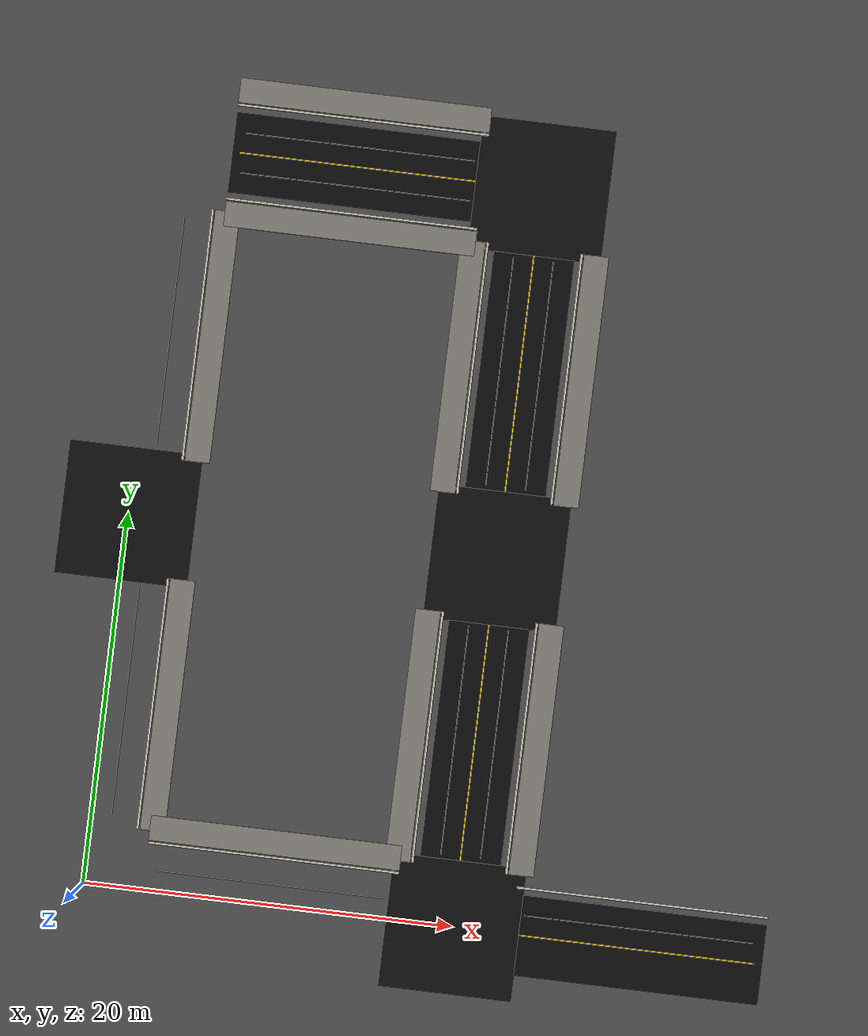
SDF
<sdf version="1.9">
 <world name="smart_city_world">
  <model name="ground">
   <static>true</static>
   <link name="link">
    <collision name="collision"><geometry><box><size>145 145 0.05</size></box></geometry></collision>
    <visual name="visual">
     <geometry><box><size>145 145 0.05</size></box></geometry>
     <material><ambient>0.30 0.30 0.30 1</ambient><diffuse>0.30 0.30 0.30 1</diffuse></material>
    </visual>
   </link>
  </model>
  <model name="road_e3">
   <static>true</static>
   <pose>10.000 40.000 0.018 0 0 0.000000</pose>
   <link name="link">
    <collision name="collision"><geometry><box><size>13.600 4.350 0.030</size></box></geometry></collision>
    <visual name="visual">
     <geometry><box><size>13.600 4.350 0.030</size></box></geometry>
     <material><ambient>0.045 0.047 0.05 1</ambient><diffuse>0.045 0.047 0.05 1</diffuse></material>
    </visual>
   </link>
  </model>
  <model name="center_line_e3">
   <static>true</static>
   <pose>10.000 40.000 0.052 0 0 0.000000</pose>
   <link name="link">
    <visual name="visual">
     <geometry><box><size>12.800 0.070 0.010</size></box></geometry>
     <material><ambient>1 0.86 0.05 1</ambient><diffuse>1 0.86 0.05 1</diffuse></material>
    </visual>
   </link>
  </model>
  <model name="sidewalk_e3_L">
   <static>true</static>
   <pose>10.000 43.350 0.075 0 0 0.000000</pose>
   <link name="link">
    <visual name="visual">
     <geometry><box><size>13.600 1.350 0.100</size></box></geometry>
     <material><ambient>0.5 0.5 0.46 1</ambient><diffuse>0.5 0.5 0.46 1</diffuse></material>
    </visual>
   </link>
  </model>
  <model name="curb_e3_L">
   <static>true</static>
   <pose>10.000 42.550 0.130 0 0 0.000000</pose>
   <link name="link">
    <visual name="visual">
     <geometry><box><size>13.600 0.120 0.180</size></box></geometry>
     <material><ambient>0.8 0.78 0.7 1</ambient><diffuse>0.8 0.78 0.7 1</diffuse></material>
    </visual>
   </link>
  </model>
  <model name="edge_line_e3_L">
   <static>true</static>
   <pose>10.000 41.080 0.054 0 0 0.000000</pose>
   <link name="link">
    <visual name="visual">
     <geometry><box><size>12.400 0.035 0.010</size></box></geometry>
     <material><ambient>0.85 0.85 0.85 1</ambient><diffuse>0.85 0.85 0.85 1</diffuse></material>
    </visual>
   </link>
  </model>
  <model name="sidewalk_e3_R">
   <static>true</static>
   <pose>10.000 36.650 0.075 0 0 0.000000</pose>
   <link name="link">
    <visual name="visual">
     <geometry><box><size>13.600 1.350 0.100</size></box></geometry>
     <material><ambient>0.5 0.5 0.46 1</ambient><diffuse>0.5 0.5 0.46 1</diffuse></material>
    </visual>
   </link>
  </model>
  <model name="curb_e3_R">
   <static>true</static>
   <pose>10.000 37.450 0.130 0 0 0.000000</pose>
   <link name="link">
    <visual name="visual">
     <geometry><box><size>13.600 0.120 0.180</size></box></geometry>
     <material><ambient>0.8 0.78 0.7 1</ambient><diffuse>0.8 0.78 0.7 1</diffuse></material>
    </visual>
   </link>
  </model>
  <model name="edge_line_e3_R">
   <static>true</static>
   <pose>10.000 38.920 0.054 0 0 0.000000</pose>
   <link name="link">
    <visual name="visual">
     <geometry><box><size>12.400 0.035 0.010</size></box></geometry>
     <material><ambient>0.85 0.85 0.85 1</ambient><diffuse>0.85 0.85 0.85 1</diffuse></material>
    </visual>
   </link>
  </model>
  <model name="center_line_e11">
   <static>true</static>
   <pose>10.000 0.000 0.052 0 0 0.000000</pose>
   <link name="link">
    <visual name="visual">
     <geometry><box><size>12.800 0.070 0.010</size></box></geometry>
     <material><ambient>1 0.86 0.05 1</ambient><diffuse>1 0.86 0.05 1</diffuse></material>
    </visual>
   </link>
  </model>
  <model name="sidewalk_e11_L">
   <static>true</static>
   <pose>10.000 3.350 0.075 0 0 0.000000</pose>
   <link name="link">
    <visual name="visual">
     <geometry><box><size>13.600 1.350 0.100</size></box></geometry>
     <material><ambient>0.5 0.5 0.46 1</ambient><diffuse>0.5 0.5 0.46 1</diffuse></material>
    </visual>
   </link>
  </model>
  <model name="curb_e11_L">
   <static>true</static>
   <pose>10.000 2.550 0.130 0 0 0.000000</pose>
   <link name="link">
    <visual name="visual">
     <geometry><box><size>13.600 0.120 0.180</size></box></geometry>
     <material><ambient>0.8 0.78 0.7 1</ambient><diffuse>0.8 0.78 0.7 1</diffuse></material>
    </visual>
   </link>
  </model>
  <model name="edge_line_e11_L">
   <static>true</static>
   <pose>10.000 1.080 0.054 0 0 0.000000</pose>
   <link name="link">
    <visual name="visual">
     <geometry><box><size>12.400 0.035 0.010</size></box></geometry>
     <material><ambient>0.85 0.85 0.85 1</ambient><diffuse>0.85 0.85 0.85 1</diffuse></material>
    </visual>
   </link>
  </model>
  <model name="road_e12">
   <static>true</static>
   <pose>30.000 0.000 0.018 0 0 0.000000</pose>
   <link name="link">
    <collision name="collision"><geometry><box><size>13.600 4.350 0.030</size></box></geometry></collision>
    <visual name="visual">
     <geometry><box><size>13.600 4.350 0.030</size></box></geometry>
     <material><ambient>0.045 0.047 0.05 1</ambient><diffuse>0.045 0.047 0.05 1</diffuse></material>
    </visual>
   </link>
  </model>
  <model name="center_line_e12">
   <static>true</static>
   <pose>30.000 0.000 0.052 0 0 0.000000</pose>
   <link name="link">
    <visual name="visual">
     <geometry><box><size>12.800 0.070 0.010</size></box></geometry>
     <material><ambient>1 0.86 0.05 1</ambient><diffuse>1 0.86 0.05 1</diffuse></material>
    </visual>
   </link>
  </model>
  <model name="curb_e12_L">
   <static>true</static>
   <pose>30.000 2.550 0.130 0 0 0.000000</pose>
   <link name="link">
    <visual name="visual">
     <geometry><box><size>13.600 0.120 0.180</size></box></geometry>
     <material><ambient>0.8 0.78 0.7 1</ambient><diffuse>0.8 0.78 0.7 1</diffuse></material>
    </visual>
   </link>
  </model>
  <model name="edge_line_e12_L">
   <static>true</static>
   <pose>30.000 1.080 0.054 0 0 0.000000</pose>
   <link name="link">
    <visual name="visual">
     <geometry><box><size>12.400 0.035 0.010</size></box></geometry>
     <material><ambient>0.85 0.85 0.85 1</ambient><diffuse>0.85 0.85 0.85 1</diffuse></material>
    </visual>
   </link>
  </model>
  <model name="sidewalk_e29_L">
   <static>true</static>
   <pose>3.350 30.000 0.075 0 0 -1.570796</pose>
   <link name="link">
    <visual name="visual">
     <geometry><box><size>13.600 1.350 0.100</size></box></geometry>
     <material><ambient>0.5 0.5 0.46 1</ambient><diffuse>0.5 0.5 0.46 1</diffuse></material>
    </visual>
   </link>
  </model>
  <model name="curb_e29_L">
   <static>true</static>
   <pose>2.550 30.000 0.130 0 0 -1.570796</pose>
   <link name="link">
    <visual name="visual">
     <geometry><box><size>13.600 0.120 0.180</size></box></geometry>
     <material><ambient>0.8 0.78 0.7 1</ambient><diffuse>0.8 0.78 0.7 1</diffuse></material>
    </visual>
   </link>
  </model>
  <model name="edge_line_e29_L">
   <static>true</static>
   <pose>1.080 30.000 0.054 0 0 -1.570796</pose>
   <link name="link">
    <visual name="visual">
     <geometry><box><size>12.400 0.035 0.010</size></box></geometry>
     <material><ambient>0.85 0.85 0.85 1</ambient><diffuse>0.85 0.85 0.85 1</diffuse></material>
    </visual>
   </link>
  </model>
  <model name="sidewalk_e30_L">
   <static>true</static>
   <pose>3.350 10.000 0.075 0 0 -1.570796</pose>
   <link name="link">
    <visual name="visual">
     <geometry><box><size>13.600 1.350 0.100</size></box></geometry>
     <material><ambient>0.5 0.5 0.46 1</ambient><diffuse>0.5 0.5 0.46 1</diffuse></material>
    </visual>
   </link>
  </model>
  <model name="curb_e30_L">
   <static>true</static>
   <pose>2.550 10.000 0.130 0 0 -1.570796</pose>
   <link name="link">
    <visual name="visual">
     <geometry><box><size>13.600 0.120 0.180</size></box></geometry>
     <material><ambient>0.8 0.78 0.7 1</ambient><diffuse>0.8 0.78 0.7 1</diffuse></material>
    </visual>
   </link>
  </model>
  <model name="edge_line_e30_L">
   <static>true</static>
   <pose>1.080 10.000 0.054 0 0 -1.570796</pose>
   <link name="link">
    <visual name="visual">
     <geometry><box><size>12.400 0.035 0.010</size></box></geometry>
     <material><ambient>0.85 0.85 0.85 1</ambient><diffuse>0.85 0.85 0.85 1</diffuse></material>
    </visual>
   </link>
  </model>
  <model name="road_e33">
   <static>true</static>
   <pose>20.000 30.000 0.018 0 0 -1.570796</pose>
   <link name="link">
    <collision name="collision"><geometry><box><size>13.600 4.350 0.030</size></box></geometry></collision>
    <visual name="visual">
     <geometry><box><size>13.600 4.350 0.030</size></box></geometry>
     <material><ambient>0.045 0.047 0.05 1</ambient><diffuse>0.045 0.047 0.05 1</diffuse></material>
    </visual>
   </link>
  </model>
  <model name="center_line_e33">
   <static>true</static>
   <pose>20.000 30.000 0.052 0 0 -1.570796</pose>
   <link name="link">
    <visual name="visual">
     <geometry><box><size>12.800 0.070 0.010</size></box></geometry>
     <material><ambient>1 0.86 0.05 1</ambient><diffuse>1 0.86 0.05 1</diffuse></material>
    </visual>
   </link>
  </model>
  <model name="sidewalk_e33_L">
   <static>true</static>
   <pose>23.350 30.000 0.075 0 0 -1.570796</pose>
   <link name="link">
    <visual name="visual">
     <geometry><box><size>13.600 1.350 0.100</size></box></geometry>
     <material><ambient>0.5 0.5 0.46 1</ambient><diffuse>0.5 0.5 0.46 1</diffuse></material>
    </visual>
   </link>
  </model>
  <model name="curb_e33_L">
   <static>true</static>
   <pose>22.550 30.000 0.130 0 0 -1.570796</pose>
   <link name="link">
    <visual name="visual">
     <geometry><box><size>13.600 0.120 0.180</size></box></geometry>
     <material><ambient>0.8 0.78 0.7 1</ambient><diffuse>0.8 0.78 0.7 1</diffuse></material>
    </visual>
   </link>
  </model>
  <model name="edge_line_e33_L">
   <static>true</static>
   <pose>21.080 30.000 0.054 0 0 -1.570796</pose>
   <link name="link">
    <visual name="visual">
     <geometry><box><size>12.400 0.035 0.010</size></box></geometry>
     <material><ambient>0.85 0.85 0.85 1</ambient><diffuse>0.85 0.85 0.85 1</diffuse></material>
    </visual>
   </link>
  </model>
  <model name="sidewalk_e33_R">
   <static>true</static>
   <pose>16.650 30.000 0.075 0 0 -1.570796</pose>
   <link name="link">
    <visual name="visual">
     <geometry><box><size>13.600 1.350 0.100</size></box></geometry>
     <material><ambient>0.5 0.5 0.46 1</ambient><diffuse>0.5 0.5 0.46 1</diffuse></material>
    </visual>
   </link>
  </model>
  <model name="curb_e33_R">
   <static>true</static>
   <pose>17.450 30.000 0.130 0 0 -1.570796</pose>
   <link name="link">
    <visual name="visual">
     <geometry><box><size>13.600 0.120 0.180</size></box></geometry>
     <material><ambient>0.8 0.78 0.7 1</ambient><diffuse>0.8 0.78 0.7 1</diffuse></material>
    </visual>
   </link>
  </model>
  <model name="edge_line_e33_R">
   <static>true</static>
   <pose>18.920 30.000 0.054 0 0 -1.570796</pose>
   <link name="link">
    <visual name="visual">
     <geometry><box><size>12.400 0.035 0.010</size></box></geometry>
     <material><ambient>0.85 0.85 0.85 1</ambient><diffuse>0.85 0.85 0.85 1</diffuse></material>
    </visual>
   </link>
  </model>
  <model name="road_e34">
   <static>true</static>
   <pose>20.000 10.000 0.018 0 0 -1.570796</pose>
   <link name="link">
    <collision name="collision"><geometry><box><size>13.600 4.350 0.030</size></box></geometry></collision>
    <visual name="visual">
     <geometry><box><size>13.600 4.350 0.030</size></box></geometry>
     <material><ambient>0.045 0.047 0.05 1</ambient><diffuse>0.045 0.047 0.05 1</diffuse></material>
    </visual>
   </link>
  </model>
  <model name="center_line_e34">
   <static>true</static>
   <pose>20.000 10.000 0.052 0 0 -1.570796</pose>
   <link name="link">
    <visual name="visual">
     <geometry><box><size>12.800 0.070 0.010</size></box></geometry>
     <material><ambient>1 0.86 0.05 1</ambient><diffuse>1 0.86 0.05 1</diffuse></material>
    </visual>
   </link>
  </model>
  <model name="sidewalk_e34_L">
   <static>true</static>
   <pose>23.350 10.000 0.075 0 0 -1.570796</pose>
   <link name="link">
    <visual name="visual">
     <geometry><box><size>13.600 1.350 0.100</size></box></geometry>
     <material><ambient>0.5 0.5 0.46 1</ambient><diffuse>0.5 0.5 0.46 1</diffuse></material>
    </visual>
   </link>
  </model>
  <model name="curb_e34_L">
   <static>true</static>
   <pose>22.550 10.000 0.130 0 0 -1.570796</pose>
   <link name="link">
    <visual name="visual">
     <geometry><box><size>13.600 0.120 0.180</size></box></geometry>
     <material><ambient>0.8 0.78 0.7 1</ambient><diffuse>0.8 0.78 0.7 1</diffuse></material>
    </visual>
   </link>
  </model>
  <model name="edge_line_e34_L">
   <static>true</static>
   <pose>21.080 10.000 0.054 0 0 -1.570796</pose>
   <link name="link">
    <visual name="visual">
     <geometry><box><size>12.400 0.035 0.010</size></box></geometry>
     <material><ambient>0.85 0.85 0.85 1</ambient><diffuse>0.85 0.85 0.85 1</diffuse></material>
    </visual>
   </link>
  </model>
  <model name="sidewalk_e34_R">
   <static>true</static>
   <pose>16.650 10.000 0.075 0 0 -1.570796</pose>
   <link name="link">
    <visual name="visual">
     <geometry><box><size>13.600 1.350 0.100</size></box></geometry>
     <material><ambient>0.5 0.5 0.46 1</ambient><diffuse>0.5 0.5 0.46 1</diffuse></material>
    </visual>
   </link>
  </model>
  <model name="curb_e34_R">
   <static>true</static>
   <pose>17.450 10.000 0.130 0 0 -1.570796</pose>
   <link name="link">
    <visual name="visual">
     <geometry><box><size>13.600 0.120 0.180</size></box></geometry>
     <material><ambient>0.8 0.78 0.7 1</ambient><diffuse>0.8 0.78 0.7 1</diffuse></material>
    </visual>
   </link>
  </model>
  <model name="edge_line_e34_R">
   <static>true</static>
   <pose>18.920 10.000 0.054 0 0 -1.570796</pose>
   <link name="link">
    <visual name="visual">
     <geometry><box><size>12.400 0.035 0.010</size></box></geometry>
     <material><ambient>0.85 0.85 0.85 1</ambient><diffuse>0.85 0.85 0.85 1</diffuse></material>
    </visual>
   </link>
  </model>
  <model name="intersection_plate_n4">
   <static>true</static>
   <pose>20.000 40.000 0.025 0 0 0.000000</pose>
   <link name="link">
    <collision name="collision"><geometry><box><size>7.200 7.200 0.035</size></box></geometry></collision>
    <visual name="visual">
     <geometry><box><size>7.200 7.200 0.035</size></box></geometry>
     <material><ambient>0.055 0.055 0.058 1</ambient><diffuse>0.055 0.055 0.058 1</diffuse></material>
    </visual>
   </link>
  </model>
  <model name="intersection_plate_n9">
   <static>true</static>
   <pose>20.000 20.000 0.025 0 0 0.000000</pose>
   <link name="link">
    <collision name="collision"><geometry><box><size>7.200 7.200 0.035</size></box></geometry></collision>
    <visual name="visual">
     <geometry><box><size>7.200 7.200 0.035</size></box></geometry>
     <material><ambient>0.055 0.055 0.058 1</ambient><diffuse>0.055 0.055 0.058 1</diffuse></material>
    </visual>
   </link>
  </model>
  <model name="intersection_plate_n14">
   <static>true</static>
   <pose>20.000 0.000 0.025 0 0 0.000000</pose>
   <link name="link">
    <collision name="collision"><geometry><box><size>7.200 7.200 0.035</size></box></geometry></collision>
    <visual name="visual">
     <geometry><box><size>7.200 7.200 0.035</size></box></geometry>
     <material><ambient>0.055 0.055 0.058 1</ambient><diffuse>0.055 0.055 0.058 1</diffuse></material>
    </visual>
   </link>
  </model>
  <model name="intersection_plate_n8">
   <static>true</static>
   <pose>0.000 20.000 0.025 0 0 0.000000</pose>
   <link name="link">
    <collision name="collision"><geometry><box><size>7.200 7.200 0.035</size></box></geometry></collision>
    <visual name="visual">
     <geometry><box><size>7.200 7.200 0.035</size></box></geometry>
     <material><ambient>0.055 0.055 0.058 1</ambient><diffuse>0.055 0.055 0.058 1</diffuse></material>
    </visual>
   </link>
  </model>
 </world>
</sdf>
